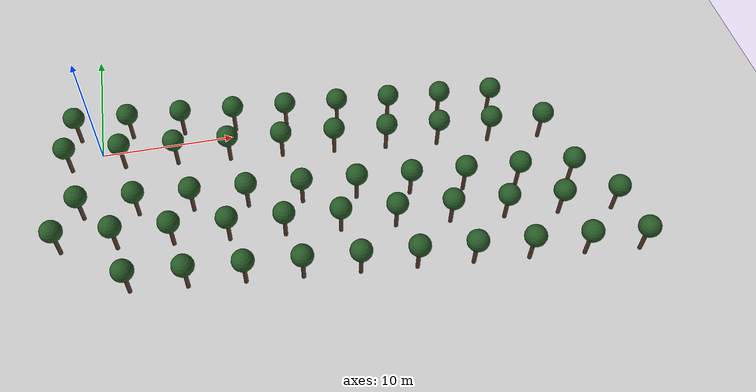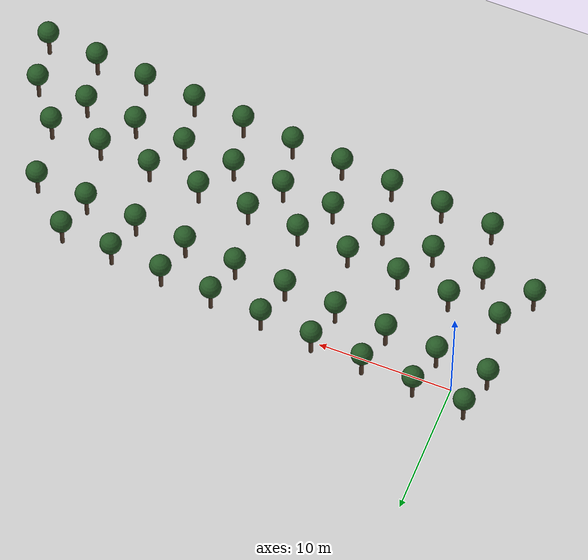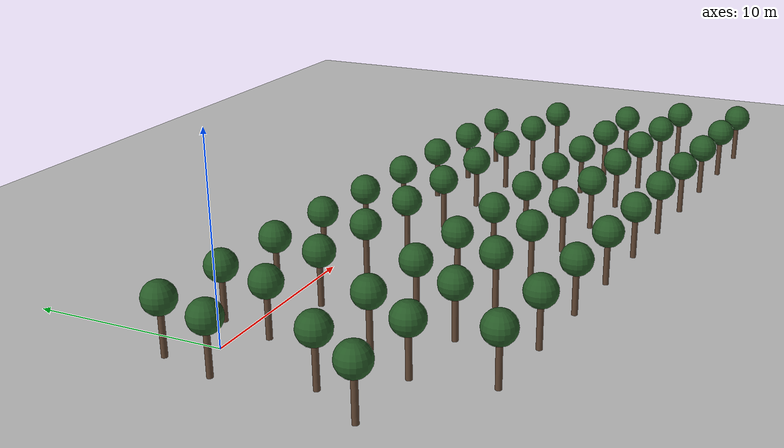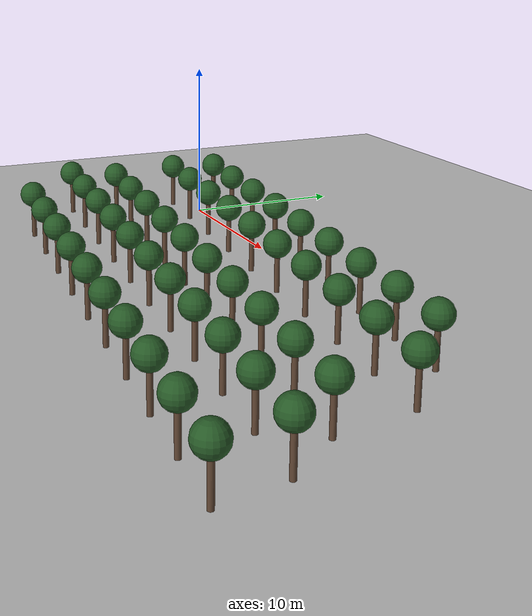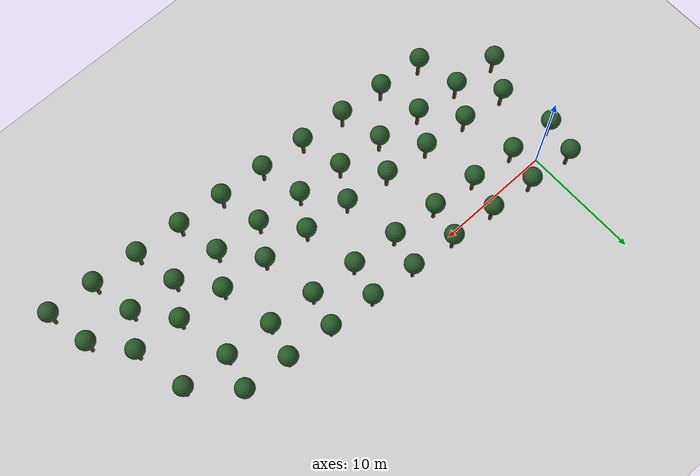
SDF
<?xml version="1.0"?>
<sdf version="1.6">
  <world name="orchard_world">
    <include>
      <uri>model://sun</uri>
    </include>

    <include>
      <uri>model://ground_plane</uri>
    </include>

    <model name="tree_r00_t000">
      <static>true</static>
      <pose>1.628047 -12.372685 0 0 0 0</pose>
      <link name="link">
        <collision name="trunk_collision">
          <pose>0 0 1.000000 0 0 0</pose>
          <geometry>
            <cylinder>
              <radius>0.150000</radius>
              <length>2.000000</length>
            </cylinder>
          </geometry>
        </collision>
        <visual name="trunk_visual">
          <pose>0 0 1.000000 0 0 0</pose>
          <geometry>
            <cylinder>
              <radius>0.150000</radius>
              <length>2.000000</length>
            </cylinder>
          </geometry>
          <material>
            <ambient>0.25 0.18 0.12 1</ambient>
            <diffuse>0.35 0.25 0.18 1</diffuse>
          </material>
        </visual>
        <visual name="canopy_visual">
          <pose>0 0 2.800000 0 0 0</pose>
          <geometry>
            <sphere>
              <radius>0.800000</radius>
            </sphere>
          </geometry>
          <material>
            <ambient>0.10 0.25 0.10 1</ambient>
            <diffuse>0.15 0.35 0.15 1</diffuse>
          </material>
        </visual>
      </link>
    </model>
    <model name="tree_r00_t001">
      <static>true</static>
      <pose>5.612924 -12.720177 0 0 0 0</pose>
      <link name="link">
        <collision name="trunk_collision">
          <pose>0 0 1.000000 0 0 0</pose>
          <geometry>
            <cylinder>
              <radius>0.150000</radius>
              <length>2.000000</length>
            </cylinder>
          </geometry>
        </collision>
        <visual name="trunk_visual">
          <pose>0 0 1.000000 0 0 0</pose>
          <geometry>
            <cylinder>
              <radius>0.150000</radius>
              <length>2.000000</length>
            </cylinder>
          </geometry>
          <material>
            <ambient>0.25 0.18 0.12 1</ambient>
            <diffuse>0.35 0.25 0.18 1</diffuse>
          </material>
        </visual>
        <visual name="canopy_visual">
          <pose>0 0 2.800000 0 0 0</pose>
          <geometry>
            <sphere>
              <radius>0.800000</radius>
            </sphere>
          </geometry>
          <material>
            <ambient>0.10 0.25 0.10 1</ambient>
            <diffuse>0.15 0.35 0.15 1</diffuse>
          </material>
        </visual>
      </link>
    </model>
    <model name="tree_r00_t002">
      <static>true</static>
      <pose>9.597802 -13.067669 0 0 0 0</pose>
      <link name="link">
        <collision name="trunk_collision">
          <pose>0 0 1.000000 0 0 0</pose>
          <geometry>
            <cylinder>
              <radius>0.150000</radius>
              <length>2.000000</length>
            </cylinder>
          </geometry>
        </collision>
        <visual name="trunk_visual">
          <pose>0 0 1.000000 0 0 0</pose>
          <geometry>
            <cylinder>
              <radius>0.150000</radius>
              <length>2.000000</length>
            </cylinder>
          </geometry>
          <material>
            <ambient>0.25 0.18 0.12 1</ambient>
            <diffuse>0.35 0.25 0.18 1</diffuse>
          </material>
        </visual>
        <visual name="canopy_visual">
          <pose>0 0 2.800000 0 0 0</pose>
          <geometry>
            <sphere>
              <radius>0.800000</radius>
            </sphere>
          </geometry>
          <material>
            <ambient>0.10 0.25 0.10 1</ambient>
            <diffuse>0.15 0.35 0.15 1</diffuse>
          </material>
        </visual>
      </link>
    </model>
    <model name="tree_r00_t003">
      <static>true</static>
      <pose>13.582680 -13.415161 0 0 0 0</pose>
      <link name="link">
        <collision name="trunk_collision">
          <pose>0 0 1.000000 0 0 0</pose>
          <geometry>
            <cylinder>
              <radius>0.150000</radius>
              <length>2.000000</length>
            </cylinder>
          </geometry>
        </collision>
        <visual name="trunk_visual">
          <pose>0 0 1.000000 0 0 0</pose>
          <geometry>
            <cylinder>
              <radius>0.150000</radius>
              <length>2.000000</length>
            </cylinder>
          </geometry>
          <material>
            <ambient>0.25 0.18 0.12 1</ambient>
            <diffuse>0.35 0.25 0.18 1</diffuse>
          </material>
        </visual>
        <visual name="canopy_visual">
          <pose>0 0 2.800000 0 0 0</pose>
          <geometry>
            <sphere>
              <radius>0.800000</radius>
            </sphere>
          </geometry>
          <material>
            <ambient>0.10 0.25 0.10 1</ambient>
            <diffuse>0.15 0.35 0.15 1</diffuse>
          </material>
        </visual>
      </link>
    </model>
    <model name="tree_r00_t004">
      <static>true</static>
      <pose>17.567557 -13.762653 0 0 0 0</pose>
      <link name="link">
        <collision name="trunk_collision">
          <pose>0 0 1.000000 0 0 0</pose>
          <geometry>
            <cylinder>
              <radius>0.150000</radius>
              <length>2.000000</length>
            </cylinder>
          </geometry>
        </collision>
        <visual name="trunk_visual">
          <pose>0 0 1.000000 0 0 0</pose>
          <geometry>
            <cylinder>
              <radius>0.150000</radius>
              <length>2.000000</length>
            </cylinder>
          </geometry>
          <material>
            <ambient>0.25 0.18 0.12 1</ambient>
            <diffuse>0.35 0.25 0.18 1</diffuse>
          </material>
        </visual>
        <visual name="canopy_visual">
          <pose>0 0 2.800000 0 0 0</pose>
          <geometry>
            <sphere>
              <radius>0.800000</radius>
            </sphere>
          </geometry>
          <material>
            <ambient>0.10 0.25 0.10 1</ambient>
            <diffuse>0.15 0.35 0.15 1</diffuse>
          </material>
        </visual>
      </link>
    </model>
    <model name="tree_r00_t005">
      <static>true</static>
      <pose>21.552435 -14.110145 0 0 0 0</pose>
      <link name="link">
        <collision name="trunk_collision">
          <pose>0 0 1.000000 0 0 0</pose>
          <geometry>
            <cylinder>
              <radius>0.150000</radius>
              <length>2.000000</length>
            </cylinder>
          </geometry>
        </collision>
        <visual name="trunk_visual">
          <pose>0 0 1.000000 0 0 0</pose>
          <geometry>
            <cylinder>
              <radius>0.150000</radius>
              <length>2.000000</length>
            </cylinder>
          </geometry>
          <material>
            <ambient>0.25 0.18 0.12 1</ambient>
            <diffuse>0.35 0.25 0.18 1</diffuse>
          </material>
        </visual>
        <visual name="canopy_visual">
          <pose>0 0 2.800000 0 0 0</pose>
          <geometry>
            <sphere>
              <radius>0.800000</radius>
            </sphere>
          </geometry>
          <material>
            <ambient>0.10 0.25 0.10 1</ambient>
            <diffuse>0.15 0.35 0.15 1</diffuse>
          </material>
        </visual>
      </link>
    </model>
    <model name="tree_r00_t006">
      <static>true</static>
      <pose>25.537312 -14.457637 0 0 0 0</pose>
      <link name="link">
        <collision name="trunk_collision">
          <pose>0 0 1.000000 0 0 0</pose>
          <geometry>
            <cylinder>
              <radius>0.150000</radius>
              <length>2.000000</length>
            </cylinder>
          </geometry>
        </collision>
        <visual name="trunk_visual">
          <pose>0 0 1.000000 0 0 0</pose>
          <geometry>
            <cylinder>
              <radius>0.150000</radius>
              <length>2.000000</length>
            </cylinder>
          </geometry>
          <material>
            <ambient>0.25 0.18 0.12 1</ambient>
            <diffuse>0.35 0.25 0.18 1</diffuse>
          </material>
        </visual>
        <visual name="canopy_visual">
          <pose>0 0 2.800000 0 0 0</pose>
          <geometry>
            <sphere>
              <radius>0.800000</radius>
            </sphere>
          </geometry>
          <material>
            <ambient>0.10 0.25 0.10 1</ambient>
            <diffuse>0.15 0.35 0.15 1</diffuse>
          </material>
        </visual>
      </link>
    </model>
    <model name="tree_r00_t007">
      <static>true</static>
      <pose>29.522190 -14.805128 0 0 0 0</pose>
      <link name="link">
        <collision name="trunk_collision">
          <pose>0 0 1.000000 0 0 0</pose>
          <geometry>
            <cylinder>
              <radius>0.150000</radius>
              <length>2.000000</length>
            </cylinder>
          </geometry>
        </collision>
        <visual name="trunk_visual">
          <pose>0 0 1.000000 0 0 0</pose>
          <geometry>
            <cylinder>
              <radius>0.150000</radius>
              <length>2.000000</length>
            </cylinder>
          </geometry>
          <material>
            <ambient>0.25 0.18 0.12 1</ambient>
            <diffuse>0.35 0.25 0.18 1</diffuse>
          </material>
        </visual>
        <visual name="canopy_visual">
          <pose>0 0 2.800000 0 0 0</pose>
          <geometry>
            <sphere>
              <radius>0.800000</radius>
            </sphere>
          </geometry>
          <material>
            <ambient>0.10 0.25 0.10 1</ambient>
            <diffuse>0.15 0.35 0.15 1</diffuse>
          </material>
        </visual>
      </link>
    </model>
    <model name="tree_r00_t008">
      <static>true</static>
      <pose>33.507067 -15.152620 0 0 0 0</pose>
      <link name="link">
        <collision name="trunk_collision">
          <pose>0 0 1.000000 0 0 0</pose>
          <geometry>
            <cylinder>
              <radius>0.150000</radius>
              <length>2.000000</length>
            </cylinder>
          </geometry>
        </collision>
        <visual name="trunk_visual">
          <pose>0 0 1.000000 0 0 0</pose>
          <geometry>
            <cylinder>
              <radius>0.150000</radius>
              <length>2.000000</length>
            </cylinder>
          </geometry>
          <material>
            <ambient>0.25 0.18 0.12 1</ambient>
            <diffuse>0.35 0.25 0.18 1</diffuse>
          </material>
        </visual>
        <visual name="canopy_visual">
          <pose>0 0 2.800000 0 0 0</pose>
          <geometry>
            <sphere>
              <radius>0.800000</radius>
            </sphere>
          </geometry>
          <material>
            <ambient>0.10 0.25 0.10 1</ambient>
            <diffuse>0.15 0.35 0.15 1</diffuse>
          </material>
        </visual>
      </link>
    </model>
    <model name="tree_r00_t009">
      <static>true</static>
      <pose>37.491945 -15.500112 0 0 0 0</pose>
      <link name="link">
        <collision name="trunk_collision">
          <pose>0 0 1.000000 0 0 0</pose>
          <geometry>
            <cylinder>
              <radius>0.150000</radius>
              <length>2.000000</length>
            </cylinder>
          </geometry>
        </collision>
        <visual name="trunk_visual">
          <pose>0 0 1.000000 0 0 0</pose>
          <geometry>
            <cylinder>
              <radius>0.150000</radius>
              <length>2.000000</length>
            </cylinder>
          </geometry>
          <material>
            <ambient>0.25 0.18 0.12 1</ambient>
            <diffuse>0.35 0.25 0.18 1</diffuse>
          </material>
        </visual>
        <visual name="canopy_visual">
          <pose>0 0 2.800000 0 0 0</pose>
          <geometry>
            <sphere>
              <radius>0.800000</radius>
            </sphere>
          </geometry>
          <material>
            <ambient>0.10 0.25 0.10 1</ambient>
            <diffuse>0.15 0.35 0.15 1</diffuse>
          </material>
        </visual>
      </link>
    </model>
    <model name="tree_r01_t000">
      <static>true</static>
      <pose>-3.090552 -8.347535 0 0 0 0</pose>
      <link name="link">
        <collision name="trunk_collision">
          <pose>0 0 1.000000 0 0 0</pose>
          <geometry>
            <cylinder>
              <radius>0.150000</radius>
              <length>2.000000</length>
            </cylinder>
          </geometry>
        </collision>
        <visual name="trunk_visual">
          <pose>0 0 1.000000 0 0 0</pose>
          <geometry>
            <cylinder>
              <radius>0.150000</radius>
              <length>2.000000</length>
            </cylinder>
          </geometry>
          <material>
            <ambient>0.25 0.18 0.12 1</ambient>
            <diffuse>0.35 0.25 0.18 1</diffuse>
          </material>
        </visual>
        <visual name="canopy_visual">
          <pose>0 0 2.800000 0 0 0</pose>
          <geometry>
            <sphere>
              <radius>0.800000</radius>
            </sphere>
          </geometry>
          <material>
            <ambient>0.10 0.25 0.10 1</ambient>
            <diffuse>0.15 0.35 0.15 1</diffuse>
          </material>
        </visual>
      </link>
    </model>
    <model name="tree_r01_t001">
      <static>true</static>
      <pose>0.894326 -8.695027 0 0 0 0</pose>
      <link name="link">
        <collision name="trunk_collision">
          <pose>0 0 1.000000 0 0 0</pose>
          <geometry>
            <cylinder>
              <radius>0.150000</radius>
              <length>2.000000</length>
            </cylinder>
          </geometry>
        </collision>
        <visual name="trunk_visual">
          <pose>0 0 1.000000 0 0 0</pose>
          <geometry>
            <cylinder>
              <radius>0.150000</radius>
              <length>2.000000</length>
            </cylinder>
          </geometry>
          <material>
            <ambient>0.25 0.18 0.12 1</ambient>
            <diffuse>0.35 0.25 0.18 1</diffuse>
          </material>
        </visual>
        <visual name="canopy_visual">
          <pose>0 0 2.800000 0 0 0</pose>
          <geometry>
            <sphere>
              <radius>0.800000</radius>
            </sphere>
          </geometry>
          <material>
            <ambient>0.10 0.25 0.10 1</ambient>
            <diffuse>0.15 0.35 0.15 1</diffuse>
          </material>
        </visual>
      </link>
    </model>
    <model name="tree_r01_t002">
      <static>true</static>
      <pose>4.879203 -9.042519 0 0 0 0</pose>
      <link name="link">
        <collision name="trunk_collision">
          <pose>0 0 1.000000 0 0 0</pose>
          <geometry>
            <cylinder>
              <radius>0.150000</radius>
              <length>2.000000</length>
            </cylinder>
          </geometry>
        </collision>
        <visual name="trunk_visual">
          <pose>0 0 1.000000 0 0 0</pose>
          <geometry>
            <cylinder>
              <radius>0.150000</radius>
              <length>2.000000</length>
            </cylinder>
          </geometry>
          <material>
            <ambient>0.25 0.18 0.12 1</ambient>
            <diffuse>0.35 0.25 0.18 1</diffuse>
          </material>
        </visual>
        <visual name="canopy_visual">
          <pose>0 0 2.800000 0 0 0</pose>
          <geometry>
            <sphere>
              <radius>0.800000</radius>
            </sphere>
          </geometry>
          <material>
            <ambient>0.10 0.25 0.10 1</ambient>
            <diffuse>0.15 0.35 0.15 1</diffuse>
          </material>
        </visual>
      </link>
    </model>
    <model name="tree_r01_t003">
      <static>true</static>
      <pose>8.864081 -9.390011 0 0 0 0</pose>
      <link name="link">
        <collision name="trunk_collision">
          <pose>0 0 1.000000 0 0 0</pose>
          <geometry>
            <cylinder>
              <radius>0.150000</radius>
              <length>2.000000</length>
            </cylinder>
          </geometry>
        </collision>
        <visual name="trunk_visual">
          <pose>0 0 1.000000 0 0 0</pose>
          <geometry>
            <cylinder>
              <radius>0.150000</radius>
              <length>2.000000</length>
            </cylinder>
          </geometry>
          <material>
            <ambient>0.25 0.18 0.12 1</ambient>
            <diffuse>0.35 0.25 0.18 1</diffuse>
          </material>
        </visual>
        <visual name="canopy_visual">
          <pose>0 0 2.800000 0 0 0</pose>
          <geometry>
            <sphere>
              <radius>0.800000</radius>
            </sphere>
          </geometry>
          <material>
            <ambient>0.10 0.25 0.10 1</ambient>
            <diffuse>0.15 0.35 0.15 1</diffuse>
          </material>
        </visual>
      </link>
    </model>
    <model name="tree_r01_t004">
      <static>true</static>
      <pose>12.848959 -9.737503 0 0 0 0</pose>
      <link name="link">
        <collision name="trunk_collision">
          <pose>0 0 1.000000 0 0 0</pose>
          <geometry>
            <cylinder>
              <radius>0.150000</radius>
              <length>2.000000</length>
            </cylinder>
          </geometry>
        </collision>
        <visual name="trunk_visual">
          <pose>0 0 1.000000 0 0 0</pose>
          <geometry>
            <cylinder>
              <radius>0.150000</radius>
              <length>2.000000</length>
            </cylinder>
          </geometry>
          <material>
            <ambient>0.25 0.18 0.12 1</ambient>
            <diffuse>0.35 0.25 0.18 1</diffuse>
          </material>
        </visual>
        <visual name="canopy_visual">
          <pose>0 0 2.800000 0 0 0</pose>
          <geometry>
            <sphere>
              <radius>0.800000</radius>
            </sphere>
          </geometry>
          <material>
            <ambient>0.10 0.25 0.10 1</ambient>
            <diffuse>0.15 0.35 0.15 1</diffuse>
          </material>
        </visual>
      </link>
    </model>
    <model name="tree_r01_t005">
      <static>true</static>
      <pose>16.833836 -10.084995 0 0 0 0</pose>
      <link name="link">
        <collision name="trunk_collision">
          <pose>0 0 1.000000 0 0 0</pose>
          <geometry>
            <cylinder>
              <radius>0.150000</radius>
              <length>2.000000</length>
            </cylinder>
          </geometry>
        </collision>
        <visual name="trunk_visual">
          <pose>0 0 1.000000 0 0 0</pose>
          <geometry>
            <cylinder>
              <radius>0.150000</radius>
              <length>2.000000</length>
            </cylinder>
          </geometry>
          <material>
            <ambient>0.25 0.18 0.12 1</ambient>
            <diffuse>0.35 0.25 0.18 1</diffuse>
          </material>
        </visual>
        <visual name="canopy_visual">
          <pose>0 0 2.800000 0 0 0</pose>
          <geometry>
            <sphere>
              <radius>0.800000</radius>
            </sphere>
          </geometry>
          <material>
            <ambient>0.10 0.25 0.10 1</ambient>
            <diffuse>0.15 0.35 0.15 1</diffuse>
          </material>
        </visual>
      </link>
    </model>
    <model name="tree_r01_t006">
      <static>true</static>
      <pose>20.818714 -10.432487 0 0 0 0</pose>
      <link name="link">
        <collision name="trunk_collision">
          <pose>0 0 1.000000 0 0 0</pose>
          <geometry>
            <cylinder>
              <radius>0.150000</radius>
              <length>2.000000</length>
            </cylinder>
          </geometry>
        </collision>
        <visual name="trunk_visual">
          <pose>0 0 1.000000 0 0 0</pose>
          <geometry>
            <cylinder>
              <radius>0.150000</radius>
              <length>2.000000</length>
            </cylinder>
          </geometry>
          <material>
            <ambient>0.25 0.18 0.12 1</ambient>
            <diffuse>0.35 0.25 0.18 1</diffuse>
          </material>
        </visual>
        <visual name="canopy_visual">
          <pose>0 0 2.800000 0 0 0</pose>
          <geometry>
            <sphere>
              <radius>0.800000</radius>
            </sphere>
          </geometry>
          <material>
            <ambient>0.10 0.25 0.10 1</ambient>
            <diffuse>0.15 0.35 0.15 1</diffuse>
          </material>
        </visual>
      </link>
    </model>
    <model name="tree_r01_t007">
      <static>true</static>
      <pose>24.803591 -10.779979 0 0 0 0</pose>
      <link name="link">
        <collision name="trunk_collision">
          <pose>0 0 1.000000 0 0 0</pose>
          <geometry>
            <cylinder>
              <radius>0.150000</radius>
              <length>2.000000</length>
            </cylinder>
          </geometry>
        </collision>
        <visual name="trunk_visual">
          <pose>0 0 1.000000 0 0 0</pose>
          <geometry>
            <cylinder>
              <radius>0.150000</radius>
              <length>2.000000</length>
            </cylinder>
          </geometry>
          <material>
            <ambient>0.25 0.18 0.12 1</ambient>
            <diffuse>0.35 0.25 0.18 1</diffuse>
          </material>
        </visual>
        <visual name="canopy_visual">
          <pose>0 0 2.800000 0 0 0</pose>
          <geometry>
            <sphere>
              <radius>0.800000</radius>
            </sphere>
          </geometry>
          <material>
            <ambient>0.10 0.25 0.10 1</ambient>
            <diffuse>0.15 0.35 0.15 1</diffuse>
          </material>
        </visual>
      </link>
    </model>
    <model name="tree_r01_t008">
      <static>true</static>
      <pose>28.788469 -11.127470 0 0 0 0</pose>
      <link name="link">
        <collision name="trunk_collision">
          <pose>0 0 1.000000 0 0 0</pose>
          <geometry>
            <cylinder>
              <radius>0.150000</radius>
              <length>2.000000</length>
            </cylinder>
          </geometry>
        </collision>
        <visual name="trunk_visual">
          <pose>0 0 1.000000 0 0 0</pose>
          <geometry>
            <cylinder>
              <radius>0.150000</radius>
              <length>2.000000</length>
            </cylinder>
          </geometry>
          <material>
            <ambient>0.25 0.18 0.12 1</ambient>
            <diffuse>0.35 0.25 0.18 1</diffuse>
          </material>
        </visual>
        <visual name="canopy_visual">
          <pose>0 0 2.800000 0 0 0</pose>
          <geometry>
            <sphere>
              <radius>0.800000</radius>
            </sphere>
          </geometry>
          <material>
            <ambient>0.10 0.25 0.10 1</ambient>
            <diffuse>0.15 0.35 0.15 1</diffuse>
          </material>
        </visual>
      </link>
    </model>
    <model name="tree_r01_t009">
      <static>true</static>
      <pose>32.773347 -11.474962 0 0 0 0</pose>
      <link name="link">
        <collision name="trunk_collision">
          <pose>0 0 1.000000 0 0 0</pose>
          <geometry>
            <cylinder>
              <radius>0.150000</radius>
              <length>2.000000</length>
            </cylinder>
          </geometry>
        </collision>
        <visual name="trunk_visual">
          <pose>0 0 1.000000 0 0 0</pose>
          <geometry>
            <cylinder>
              <radius>0.150000</radius>
              <length>2.000000</length>
            </cylinder>
          </geometry>
          <material>
            <ambient>0.25 0.18 0.12 1</ambient>
            <diffuse>0.35 0.25 0.18 1</diffuse>
          </material>
        </visual>
        <visual name="canopy_visual">
          <pose>0 0 2.800000 0 0 0</pose>
          <geometry>
            <sphere>
              <radius>0.800000</radius>
            </sphere>
          </geometry>
          <material>
            <ambient>0.10 0.25 0.10 1</ambient>
            <diffuse>0.15 0.35 0.15 1</diffuse>
          </material>
        </visual>
      </link>
    </model>
    <model name="tree_r01_t010">
      <static>true</static>
      <pose>36.758224 -11.822454 0 0 0 0</pose>
      <link name="link">
        <collision name="trunk_collision">
          <pose>0 0 1.000000 0 0 0</pose>
          <geometry>
            <cylinder>
              <radius>0.150000</radius>
              <length>2.000000</length>
            </cylinder>
          </geometry>
        </collision>
        <visual name="trunk_visual">
          <pose>0 0 1.000000 0 0 0</pose>
          <geometry>
            <cylinder>
              <radius>0.150000</radius>
              <length>2.000000</length>
            </cylinder>
          </geometry>
          <material>
            <ambient>0.25 0.18 0.12 1</ambient>
            <diffuse>0.35 0.25 0.18 1</diffuse>
          </material>
        </visual>
        <visual name="canopy_visual">
          <pose>0 0 2.800000 0 0 0</pose>
          <geometry>
            <sphere>
              <radius>0.800000</radius>
            </sphere>
          </geometry>
          <material>
            <ambient>0.10 0.25 0.10 1</ambient>
            <diffuse>0.15 0.35 0.15 1</diffuse>
          </material>
        </visual>
      </link>
    </model>
    <model name="tree_r02_t000">
      <static>true</static>
      <pose>-1.440409 -5.680796 0 0 0 0</pose>
      <link name="link">
        <collision name="trunk_collision">
          <pose>0 0 1.000000 0 0 0</pose>
          <geometry>
            <cylinder>
              <radius>0.150000</radius>
              <length>2.000000</length>
            </cylinder>
          </geometry>
        </collision>
        <visual name="trunk_visual">
          <pose>0 0 1.000000 0 0 0</pose>
          <geometry>
            <cylinder>
              <radius>0.150000</radius>
              <length>2.000000</length>
            </cylinder>
          </geometry>
          <material>
            <ambient>0.25 0.18 0.12 1</ambient>
            <diffuse>0.35 0.25 0.18 1</diffuse>
          </material>
        </visual>
        <visual name="canopy_visual">
          <pose>0 0 2.800000 0 0 0</pose>
          <geometry>
            <sphere>
              <radius>0.800000</radius>
            </sphere>
          </geometry>
          <material>
            <ambient>0.10 0.25 0.10 1</ambient>
            <diffuse>0.15 0.35 0.15 1</diffuse>
          </material>
        </visual>
      </link>
    </model>
    <model name="tree_r02_t001">
      <static>true</static>
      <pose>2.544469 -6.028288 0 0 0 0</pose>
      <link name="link">
        <collision name="trunk_collision">
          <pose>0 0 1.000000 0 0 0</pose>
          <geometry>
            <cylinder>
              <radius>0.150000</radius>
              <length>2.000000</length>
            </cylinder>
          </geometry>
        </collision>
        <visual name="trunk_visual">
          <pose>0 0 1.000000 0 0 0</pose>
          <geometry>
            <cylinder>
              <radius>0.150000</radius>
              <length>2.000000</length>
            </cylinder>
          </geometry>
          <material>
            <ambient>0.25 0.18 0.12 1</ambient>
            <diffuse>0.35 0.25 0.18 1</diffuse>
          </material>
        </visual>
        <visual name="canopy_visual">
          <pose>0 0 2.800000 0 0 0</pose>
          <geometry>
            <sphere>
              <radius>0.800000</radius>
            </sphere>
          </geometry>
          <material>
            <ambient>0.10 0.25 0.10 1</ambient>
            <diffuse>0.15 0.35 0.15 1</diffuse>
          </material>
        </visual>
      </link>
    </model>
    <model name="tree_r02_t002">
      <static>true</static>
      <pose>6.529346 -6.375779 0 0 0 0</pose>
      <link name="link">
        <collision name="trunk_collision">
          <pose>0 0 1.000000 0 0 0</pose>
          <geometry>
            <cylinder>
              <radius>0.150000</radius>
              <length>2.000000</length>
            </cylinder>
          </geometry>
        </collision>
        <visual name="trunk_visual">
          <pose>0 0 1.000000 0 0 0</pose>
          <geometry>
            <cylinder>
              <radius>0.150000</radius>
              <length>2.000000</length>
            </cylinder>
          </geometry>
          <material>
            <ambient>0.25 0.18 0.12 1</ambient>
            <diffuse>0.35 0.25 0.18 1</diffuse>
          </material>
        </visual>
        <visual name="canopy_visual">
          <pose>0 0 2.800000 0 0 0</pose>
          <geometry>
            <sphere>
              <radius>0.800000</radius>
            </sphere>
          </geometry>
          <material>
            <ambient>0.10 0.25 0.10 1</ambient>
            <diffuse>0.15 0.35 0.15 1</diffuse>
          </material>
        </visual>
      </link>
    </model>
    <model name="tree_r02_t003">
      <static>true</static>
      <pose>10.514224 -6.723271 0 0 0 0</pose>
      <link name="link">
        <collision name="trunk_collision">
          <pose>0 0 1.000000 0 0 0</pose>
          <geometry>
            <cylinder>
              <radius>0.150000</radius>
              <length>2.000000</length>
            </cylinder>
          </geometry>
        </collision>
        <visual name="trunk_visual">
          <pose>0 0 1.000000 0 0 0</pose>
          <geometry>
            <cylinder>
              <radius>0.150000</radius>
              <length>2.000000</length>
            </cylinder>
          </geometry>
          <material>
            <ambient>0.25 0.18 0.12 1</ambient>
            <diffuse>0.35 0.25 0.18 1</diffuse>
          </material>
        </visual>
        <visual name="canopy_visual">
          <pose>0 0 2.800000 0 0 0</pose>
          <geometry>
            <sphere>
              <radius>0.800000</radius>
            </sphere>
          </geometry>
          <material>
            <ambient>0.10 0.25 0.10 1</ambient>
            <diffuse>0.15 0.35 0.15 1</diffuse>
          </material>
        </visual>
      </link>
    </model>
    <model name="tree_r02_t004">
      <static>true</static>
      <pose>14.499102 -7.070763 0 0 0 0</pose>
      <link name="link">
        <collision name="trunk_collision">
          <pose>0 0 1.000000 0 0 0</pose>
          <geometry>
            <cylinder>
              <radius>0.150000</radius>
              <length>2.000000</length>
            </cylinder>
          </geometry>
        </collision>
        <visual name="trunk_visual">
          <pose>0 0 1.000000 0 0 0</pose>
          <geometry>
            <cylinder>
              <radius>0.150000</radius>
              <length>2.000000</length>
            </cylinder>
          </geometry>
          <material>
            <ambient>0.25 0.18 0.12 1</ambient>
            <diffuse>0.35 0.25 0.18 1</diffuse>
          </material>
        </visual>
        <visual name="canopy_visual">
          <pose>0 0 2.800000 0 0 0</pose>
          <geometry>
            <sphere>
              <radius>0.800000</radius>
            </sphere>
          </geometry>
          <material>
            <ambient>0.10 0.25 0.10 1</ambient>
            <diffuse>0.15 0.35 0.15 1</diffuse>
          </material>
        </visual>
      </link>
    </model>
    <model name="tree_r02_t005">
      <static>true</static>
      <pose>18.483979 -7.418255 0 0 0 0</pose>
      <link name="link">
        <collision name="trunk_collision">
          <pose>0 0 1.000000 0 0 0</pose>
          <geometry>
            <cylinder>
              <radius>0.150000</radius>
              <length>2.000000</length>
            </cylinder>
          </geometry>
        </collision>
        <visual name="trunk_visual">
          <pose>0 0 1.000000 0 0 0</pose>
          <geometry>
            <cylinder>
              <radius>0.150000</radius>
              <length>2.000000</length>
            </cylinder>
          </geometry>
          <material>
            <ambient>0.25 0.18 0.12 1</ambient>
            <diffuse>0.35 0.25 0.18 1</diffuse>
          </material>
        </visual>
        <visual name="canopy_visual">
          <pose>0 0 2.800000 0 0 0</pose>
          <geometry>
            <sphere>
              <radius>0.800000</radius>
            </sphere>
          </geometry>
          <material>
            <ambient>0.10 0.25 0.10 1</ambient>
            <diffuse>0.15 0.35 0.15 1</diffuse>
          </material>
        </visual>
      </link>
    </model>
    <model name="tree_r02_t006">
      <static>true</static>
      <pose>22.468857 -7.765747 0 0 0 0</pose>
      <link name="link">
        <collision name="trunk_collision">
          <pose>0 0 1.000000 0 0 0</pose>
          <geometry>
            <cylinder>
              <radius>0.150000</radius>
              <length>2.000000</length>
            </cylinder>
          </geometry>
        </collision>
        <visual name="trunk_visual">
          <pose>0 0 1.000000 0 0 0</pose>
          <geometry>
            <cylinder>
              <radius>0.150000</radius>
              <length>2.000000</length>
            </cylinder>
          </geometry>
          <material>
            <ambient>0.25 0.18 0.12 1</ambient>
            <diffuse>0.35 0.25 0.18 1</diffuse>
          </material>
        </visual>
        <visual name="canopy_visual">
          <pose>0 0 2.800000 0 0 0</pose>
          <geometry>
            <sphere>
              <radius>0.800000</radius>
            </sphere>
          </geometry>
          <material>
            <ambient>0.10 0.25 0.10 1</ambient>
            <diffuse>0.15 0.35 0.15 1</diffuse>
          </material>
        </visual>
      </link>
    </model>
    <model name="tree_r02_t007">
      <static>true</static>
      <pose>26.453734 -8.113239 0 0 0 0</pose>
      <link name="link">
        <collision name="trunk_collision">
          <pose>0 0 1.000000 0 0 0</pose>
          <geometry>
            <cylinder>
              <radius>0.150000</radius>
              <length>2.000000</length>
            </cylinder>
          </geometry>
        </collision>
        <visual name="trunk_visual">
          <pose>0 0 1.000000 0 0 0</pose>
          <geometry>
            <cylinder>
              <radius>0.150000</radius>
              <length>2.000000</length>
            </cylinder>
          </geometry>
          <material>
            <ambient>0.25 0.18 0.12 1</ambient>
            <diffuse>0.35 0.25 0.18 1</diffuse>
          </material>
        </visual>
        <visual name="canopy_visual">
          <pose>0 0 2.800000 0 0 0</pose>
          <geometry>
            <sphere>
              <radius>0.800000</radius>
            </sphere>
          </geometry>
          <material>
            <ambient>0.10 0.25 0.10 1</ambient>
            <diffuse>0.15 0.35 0.15 1</diffuse>
          </material>
        </visual>
      </link>
    </model>
    <model name="tree_r02_t008">
      <static>true</static>
      <pose>30.438612 -8.460731 0 0 0 0</pose>
      <link name="link">
        <collision name="trunk_collision">
          <pose>0 0 1.000000 0 0 0</pose>
          <geometry>
            <cylinder>
              <radius>0.150000</radius>
              <length>2.000000</length>
            </cylinder>
          </geometry>
        </collision>
        <visual name="trunk_visual">
          <pose>0 0 1.000000 0 0 0</pose>
          <geometry>
            <cylinder>
              <radius>0.150000</radius>
              <length>2.000000</length>
            </cylinder>
          </geometry>
          <material>
            <ambient>0.25 0.18 0.12 1</ambient>
            <diffuse>0.35 0.25 0.18 1</diffuse>
          </material>
        </visual>
        <visual name="canopy_visual">
          <pose>0 0 2.800000 0 0 0</pose>
          <geometry>
            <sphere>
              <radius>0.800000</radius>
            </sphere>
          </geometry>
          <material>
            <ambient>0.10 0.25 0.10 1</ambient>
            <diffuse>0.15 0.35 0.15 1</diffuse>
          </material>
        </visual>
      </link>
    </model>
    <model name="tree_r02_t009">
      <static>true</static>
      <pose>34.423490 -8.808222 0 0 0 0</pose>
      <link name="link">
        <collision name="trunk_collision">
          <pose>0 0 1.000000 0 0 0</pose>
          <geometry>
            <cylinder>
              <radius>0.150000</radius>
              <length>2.000000</length>
            </cylinder>
          </geometry>
        </collision>
        <visual name="trunk_visual">
          <pose>0 0 1.000000 0 0 0</pose>
          <geometry>
            <cylinder>
              <radius>0.150000</radius>
              <length>2.000000</length>
            </cylinder>
          </geometry>
          <material>
            <ambient>0.25 0.18 0.12 1</ambient>
            <diffuse>0.35 0.25 0.18 1</diffuse>
          </material>
        </visual>
        <visual name="canopy_visual">
          <pose>0 0 2.800000 0 0 0</pose>
          <geometry>
            <sphere>
              <radius>0.800000</radius>
            </sphere>
          </geometry>
          <material>
            <ambient>0.10 0.25 0.10 1</ambient>
            <diffuse>0.15 0.35 0.15 1</diffuse>
          </material>
        </visual>
      </link>
    </model>
    <model name="tree_r03_t000">
      <static>true</static>
      <pose>-2.294395 -1.089231 0 0 0 0</pose>
      <link name="link">
        <collision name="trunk_collision">
          <pose>0 0 1.000000 0 0 0</pose>
          <geometry>
            <cylinder>
              <radius>0.150000</radius>
              <length>2.000000</length>
            </cylinder>
          </geometry>
        </collision>
        <visual name="trunk_visual">
          <pose>0 0 1.000000 0 0 0</pose>
          <geometry>
            <cylinder>
              <radius>0.150000</radius>
              <length>2.000000</length>
            </cylinder>
          </geometry>
          <material>
            <ambient>0.25 0.18 0.12 1</ambient>
            <diffuse>0.35 0.25 0.18 1</diffuse>
          </material>
        </visual>
        <visual name="canopy_visual">
          <pose>0 0 2.800000 0 0 0</pose>
          <geometry>
            <sphere>
              <radius>0.800000</radius>
            </sphere>
          </geometry>
          <material>
            <ambient>0.10 0.25 0.10 1</ambient>
            <diffuse>0.15 0.35 0.15 1</diffuse>
          </material>
        </visual>
      </link>
    </model>
    <model name="tree_r03_t001">
      <static>true</static>
      <pose>1.690482 -1.436723 0 0 0 0</pose>
      <link name="link">
        <collision name="trunk_collision">
          <pose>0 0 1.000000 0 0 0</pose>
          <geometry>
            <cylinder>
              <radius>0.150000</radius>
              <length>2.000000</length>
            </cylinder>
          </geometry>
        </collision>
        <visual name="trunk_visual">
          <pose>0 0 1.000000 0 0 0</pose>
          <geometry>
            <cylinder>
              <radius>0.150000</radius>
              <length>2.000000</length>
            </cylinder>
          </geometry>
          <material>
            <ambient>0.25 0.18 0.12 1</ambient>
            <diffuse>0.35 0.25 0.18 1</diffuse>
          </material>
        </visual>
        <visual name="canopy_visual">
          <pose>0 0 2.800000 0 0 0</pose>
          <geometry>
            <sphere>
              <radius>0.800000</radius>
            </sphere>
          </geometry>
          <material>
            <ambient>0.10 0.25 0.10 1</ambient>
            <diffuse>0.15 0.35 0.15 1</diffuse>
          </material>
        </visual>
      </link>
    </model>
    <model name="tree_r03_t002">
      <static>true</static>
      <pose>5.675360 -1.784215 0 0 0 0</pose>
      <link name="link">
        <collision name="trunk_collision">
          <pose>0 0 1.000000 0 0 0</pose>
          <geometry>
            <cylinder>
              <radius>0.150000</radius>
              <length>2.000000</length>
            </cylinder>
          </geometry>
        </collision>
        <visual name="trunk_visual">
          <pose>0 0 1.000000 0 0 0</pose>
          <geometry>
            <cylinder>
              <radius>0.150000</radius>
              <length>2.000000</length>
            </cylinder>
          </geometry>
          <material>
            <ambient>0.25 0.18 0.12 1</ambient>
            <diffuse>0.35 0.25 0.18 1</diffuse>
          </material>
        </visual>
        <visual name="canopy_visual">
          <pose>0 0 2.800000 0 0 0</pose>
          <geometry>
            <sphere>
              <radius>0.800000</radius>
            </sphere>
          </geometry>
          <material>
            <ambient>0.10 0.25 0.10 1</ambient>
            <diffuse>0.15 0.35 0.15 1</diffuse>
          </material>
        </visual>
      </link>
    </model>
    <model name="tree_r03_t003">
      <static>true</static>
      <pose>9.660237 -2.131707 0 0 0 0</pose>
      <link name="link">
        <collision name="trunk_collision">
          <pose>0 0 1.000000 0 0 0</pose>
          <geometry>
            <cylinder>
              <radius>0.150000</radius>
              <length>2.000000</length>
            </cylinder>
          </geometry>
        </collision>
        <visual name="trunk_visual">
          <pose>0 0 1.000000 0 0 0</pose>
          <geometry>
            <cylinder>
              <radius>0.150000</radius>
              <length>2.000000</length>
            </cylinder>
          </geometry>
          <material>
            <ambient>0.25 0.18 0.12 1</ambient>
            <diffuse>0.35 0.25 0.18 1</diffuse>
          </material>
        </visual>
        <visual name="canopy_visual">
          <pose>0 0 2.800000 0 0 0</pose>
          <geometry>
            <sphere>
              <radius>0.800000</radius>
            </sphere>
          </geometry>
          <material>
            <ambient>0.10 0.25 0.10 1</ambient>
            <diffuse>0.15 0.35 0.15 1</diffuse>
          </material>
        </visual>
      </link>
    </model>
    <model name="tree_r03_t004">
      <static>true</static>
      <pose>13.645115 -2.479199 0 0 0 0</pose>
      <link name="link">
        <collision name="trunk_collision">
          <pose>0 0 1.000000 0 0 0</pose>
          <geometry>
            <cylinder>
              <radius>0.150000</radius>
              <length>2.000000</length>
            </cylinder>
          </geometry>
        </collision>
        <visual name="trunk_visual">
          <pose>0 0 1.000000 0 0 0</pose>
          <geometry>
            <cylinder>
              <radius>0.150000</radius>
              <length>2.000000</length>
            </cylinder>
          </geometry>
          <material>
            <ambient>0.25 0.18 0.12 1</ambient>
            <diffuse>0.35 0.25 0.18 1</diffuse>
          </material>
        </visual>
        <visual name="canopy_visual">
          <pose>0 0 2.800000 0 0 0</pose>
          <geometry>
            <sphere>
              <radius>0.800000</radius>
            </sphere>
          </geometry>
          <material>
            <ambient>0.10 0.25 0.10 1</ambient>
            <diffuse>0.15 0.35 0.15 1</diffuse>
          </material>
        </visual>
      </link>
    </model>
    <model name="tree_r03_t005">
      <static>true</static>
      <pose>17.629993 -2.826691 0 0 0 0</pose>
      <link name="link">
        <collision name="trunk_collision">
          <pose>0 0 1.000000 0 0 0</pose>
          <geometry>
            <cylinder>
              <radius>0.150000</radius>
              <length>2.000000</length>
            </cylinder>
          </geometry>
        </collision>
        <visual name="trunk_visual">
          <pose>0 0 1.000000 0 0 0</pose>
          <geometry>
            <cylinder>
              <radius>0.150000</radius>
              <length>2.000000</length>
            </cylinder>
          </geometry>
          <material>
            <ambient>0.25 0.18 0.12 1</ambient>
            <diffuse>0.35 0.25 0.18 1</diffuse>
          </material>
        </visual>
        <visual name="canopy_visual">
          <pose>0 0 2.800000 0 0 0</pose>
          <geometry>
            <sphere>
              <radius>0.800000</radius>
            </sphere>
          </geometry>
          <material>
            <ambient>0.10 0.25 0.10 1</ambient>
            <diffuse>0.15 0.35 0.15 1</diffuse>
          </material>
        </visual>
      </link>
    </model>
    <model name="tree_r03_t006">
      <static>true</static>
      <pose>21.614870 -3.174183 0 0 0 0</pose>
      <link name="link">
        <collision name="trunk_collision">
          <pose>0 0 1.000000 0 0 0</pose>
          <geometry>
            <cylinder>
              <radius>0.150000</radius>
              <length>2.000000</length>
            </cylinder>
          </geometry>
        </collision>
        <visual name="trunk_visual">
          <pose>0 0 1.000000 0 0 0</pose>
          <geometry>
            <cylinder>
              <radius>0.150000</radius>
              <length>2.000000</length>
            </cylinder>
          </geometry>
          <material>
            <ambient>0.25 0.18 0.12 1</ambient>
            <diffuse>0.35 0.25 0.18 1</diffuse>
          </material>
        </visual>
        <visual name="canopy_visual">
          <pose>0 0 2.800000 0 0 0</pose>
          <geometry>
            <sphere>
              <radius>0.800000</radius>
            </sphere>
          </geometry>
          <material>
            <ambient>0.10 0.25 0.10 1</ambient>
            <diffuse>0.15 0.35 0.15 1</diffuse>
          </material>
        </visual>
      </link>
    </model>
    <model name="tree_r03_t007">
      <static>true</static>
      <pose>25.599748 -3.521674 0 0 0 0</pose>
      <link name="link">
        <collision name="trunk_collision">
          <pose>0 0 1.000000 0 0 0</pose>
          <geometry>
            <cylinder>
              <radius>0.150000</radius>
              <length>2.000000</length>
            </cylinder>
          </geometry>
        </collision>
        <visual name="trunk_visual">
          <pose>0 0 1.000000 0 0 0</pose>
          <geometry>
            <cylinder>
              <radius>0.150000</radius>
              <length>2.000000</length>
            </cylinder>
          </geometry>
          <material>
            <ambient>0.25 0.18 0.12 1</ambient>
            <diffuse>0.35 0.25 0.18 1</diffuse>
          </material>
        </visual>
        <visual name="canopy_visual">
          <pose>0 0 2.800000 0 0 0</pose>
          <geometry>
            <sphere>
              <radius>0.800000</radius>
            </sphere>
          </geometry>
          <material>
            <ambient>0.10 0.25 0.10 1</ambient>
            <diffuse>0.15 0.35 0.15 1</diffuse>
          </material>
        </visual>
      </link>
    </model>
    <model name="tree_r03_t008">
      <static>true</static>
      <pose>29.584625 -3.869166 0 0 0 0</pose>
      <link name="link">
        <collision name="trunk_collision">
          <pose>0 0 1.000000 0 0 0</pose>
          <geometry>
            <cylinder>
              <radius>0.150000</radius>
              <length>2.000000</length>
            </cylinder>
          </geometry>
        </collision>
        <visual name="trunk_visual">
          <pose>0 0 1.000000 0 0 0</pose>
          <geometry>
            <cylinder>
              <radius>0.150000</radius>
              <length>2.000000</length>
            </cylinder>
          </geometry>
          <material>
            <ambient>0.25 0.18 0.12 1</ambient>
            <diffuse>0.35 0.25 0.18 1</diffuse>
          </material>
        </visual>
        <visual name="canopy_visual">
          <pose>0 0 2.800000 0 0 0</pose>
          <geometry>
            <sphere>
              <radius>0.800000</radius>
            </sphere>
          </geometry>
          <material>
            <ambient>0.10 0.25 0.10 1</ambient>
            <diffuse>0.15 0.35 0.15 1</diffuse>
          </material>
        </visual>
      </link>
    </model>
    <model name="tree_r03_t009">
      <static>true</static>
      <pose>33.569503 -4.216658 0 0 0 0</pose>
      <link name="link">
        <collision name="trunk_collision">
          <pose>0 0 1.000000 0 0 0</pose>
          <geometry>
            <cylinder>
              <radius>0.150000</radius>
              <length>2.000000</length>
            </cylinder>
          </geometry>
        </collision>
        <visual name="trunk_visual">
          <pose>0 0 1.000000 0 0 0</pose>
          <geometry>
            <cylinder>
              <radius>0.150000</radius>
              <length>2.000000</length>
            </cylinder>
          </geometry>
          <material>
            <ambient>0.25 0.18 0.12 1</ambient>
            <diffuse>0.35 0.25 0.18 1</diffuse>
          </material>
        </visual>
        <visual name="canopy_visual">
          <pose>0 0 2.800000 0 0 0</pose>
          <geometry>
            <sphere>
              <radius>0.800000</radius>
            </sphere>
          </geometry>
          <material>
            <ambient>0.10 0.25 0.10 1</ambient>
            <diffuse>0.15 0.35 0.15 1</diffuse>
          </material>
        </visual>
      </link>
    </model>
    <model name="tree_r04_t000">
      <static>true</static>
      <pose>-1.583292 1.759775 0 0 0 0</pose>
      <link name="link">
        <collision name="trunk_collision">
          <pose>0 0 1.000000 0 0 0</pose>
          <geometry>
            <cylinder>
              <radius>0.150000</radius>
              <length>2.000000</length>
            </cylinder>
          </geometry>
        </collision>
        <visual name="trunk_visual">
          <pose>0 0 1.000000 0 0 0</pose>
          <geometry>
            <cylinder>
              <radius>0.150000</radius>
              <length>2.000000</length>
            </cylinder>
          </geometry>
          <material>
            <ambient>0.25 0.18 0.12 1</ambient>
            <diffuse>0.35 0.25 0.18 1</diffuse>
          </material>
        </visual>
        <visual name="canopy_visual">
          <pose>0 0 2.800000 0 0 0</pose>
          <geometry>
            <sphere>
              <radius>0.800000</radius>
            </sphere>
          </geometry>
          <material>
            <ambient>0.10 0.25 0.10 1</ambient>
            <diffuse>0.15 0.35 0.15 1</diffuse>
          </material>
        </visual>
      </link>
    </model>
    <model name="tree_r04_t001">
      <static>true</static>
      <pose>2.401585 1.412283 0 0 0 0</pose>
      <link name="link">
        <collision name="trunk_collision">
          <pose>0 0 1.000000 0 0 0</pose>
          <geometry>
            <cylinder>
              <radius>0.150000</radius>
              <length>2.000000</length>
            </cylinder>
          </geometry>
        </collision>
        <visual name="trunk_visual">
          <pose>0 0 1.000000 0 0 0</pose>
          <geometry>
            <cylinder>
              <radius>0.150000</radius>
              <length>2.000000</length>
            </cylinder>
          </geometry>
          <material>
            <ambient>0.25 0.18 0.12 1</ambient>
            <diffuse>0.35 0.25 0.18 1</diffuse>
          </material>
        </visual>
        <visual name="canopy_visual">
          <pose>0 0 2.800000 0 0 0</pose>
          <geometry>
            <sphere>
              <radius>0.800000</radius>
            </sphere>
          </geometry>
          <material>
            <ambient>0.10 0.25 0.10 1</ambient>
            <diffuse>0.15 0.35 0.15 1</diffuse>
          </material>
        </visual>
      </link>
    </model>
    <model name="tree_r04_t002">
      <static>true</static>
      <pose>6.386463 1.064791 0 0 0 0</pose>
      <link name="link">
        <collision name="trunk_collision">
          <pose>0 0 1.000000 0 0 0</pose>
          <geometry>
            <cylinder>
              <radius>0.150000</radius>
              <length>2.000000</length>
            </cylinder>
          </geometry>
        </collision>
        <visual name="trunk_visual">
          <pose>0 0 1.000000 0 0 0</pose>
          <geometry>
            <cylinder>
              <radius>0.150000</radius>
              <length>2.000000</length>
            </cylinder>
          </geometry>
          <material>
            <ambient>0.25 0.18 0.12 1</ambient>
            <diffuse>0.35 0.25 0.18 1</diffuse>
          </material>
        </visual>
        <visual name="canopy_visual">
          <pose>0 0 2.800000 0 0 0</pose>
          <geometry>
            <sphere>
              <radius>0.800000</radius>
            </sphere>
          </geometry>
          <material>
            <ambient>0.10 0.25 0.10 1</ambient>
            <diffuse>0.15 0.35 0.15 1</diffuse>
          </material>
        </visual>
      </link>
    </model>
    <model name="tree_r04_t003">
      <static>true</static>
      <pose>10.371340 0.717299 0 0 0 0</pose>
      <link name="link">
        <collision name="trunk_collision">
          <pose>0 0 1.000000 0 0 0</pose>
          <geometry>
            <cylinder>
              <radius>0.150000</radius>
              <length>2.000000</length>
            </cylinder>
          </geometry>
        </collision>
        <visual name="trunk_visual">
          <pose>0 0 1.000000 0 0 0</pose>
          <geometry>
            <cylinder>
              <radius>0.150000</radius>
              <length>2.000000</length>
            </cylinder>
          </geometry>
          <material>
            <ambient>0.25 0.18 0.12 1</ambient>
            <diffuse>0.35 0.25 0.18 1</diffuse>
          </material>
        </visual>
        <visual name="canopy_visual">
          <pose>0 0 2.800000 0 0 0</pose>
          <geometry>
            <sphere>
              <radius>0.800000</radius>
            </sphere>
          </geometry>
          <material>
            <ambient>0.10 0.25 0.10 1</ambient>
            <diffuse>0.15 0.35 0.15 1</diffuse>
          </material>
        </visual>
      </link>
    </model>
    <model name="tree_r04_t004">
      <static>true</static>
      <pose>14.356218 0.369808 0 0 0 0</pose>
      <link name="link">
        <collision name="trunk_collision">
          <pose>0 0 1.000000 0 0 0</pose>
          <geometry>
            <cylinder>
              <radius>0.150000</radius>
              <length>2.000000</length>
            </cylinder>
          </geometry>
        </collision>
        <visual name="trunk_visual">
          <pose>0 0 1.000000 0 0 0</pose>
          <geometry>
            <cylinder>
              <radius>0.150000</radius>
              <length>2.000000</length>
            </cylinder>
          </geometry>
          <material>
            <ambient>0.25 0.18 0.12 1</ambient>
            <diffuse>0.35 0.25 0.18 1</diffuse>
          </material>
        </visual>
        <visual name="canopy_visual">
          <pose>0 0 2.800000 0 0 0</pose>
          <geometry>
            <sphere>
              <radius>0.800000</radius>
            </sphere>
          </geometry>
          <material>
            <ambient>0.10 0.25 0.10 1</ambient>
            <diffuse>0.15 0.35 0.15 1</diffuse>
          </material>
        </visual>
      </link>
    </model>
    <model name="tree_r04_t005">
      <static>true</static>
      <pose>18.341096 0.022316 0 0 0 0</pose>
      <link name="link">
        <collision name="trunk_collision">
          <pose>0 0 1.000000 0 0 0</pose>
          <geometry>
            <cylinder>
              <radius>0.150000</radius>
              <length>2.000000</length>
            </cylinder>
          </geometry>
        </collision>
        <visual name="trunk_visual">
          <pose>0 0 1.000000 0 0 0</pose>
          <geometry>
            <cylinder>
              <radius>0.150000</radius>
              <length>2.000000</length>
            </cylinder>
          </geometry>
          <material>
            <ambient>0.25 0.18 0.12 1</ambient>
            <diffuse>0.35 0.25 0.18 1</diffuse>
          </material>
        </visual>
        <visual name="canopy_visual">
          <pose>0 0 2.800000 0 0 0</pose>
          <geometry>
            <sphere>
              <radius>0.800000</radius>
            </sphere>
          </geometry>
          <material>
            <ambient>0.10 0.25 0.10 1</ambient>
            <diffuse>0.15 0.35 0.15 1</diffuse>
          </material>
        </visual>
      </link>
    </model>
    <model name="tree_r04_t006">
      <static>true</static>
      <pose>22.325973 -0.325176 0 0 0 0</pose>
      <link name="link">
        <collision name="trunk_collision">
          <pose>0 0 1.000000 0 0 0</pose>
          <geometry>
            <cylinder>
              <radius>0.150000</radius>
              <length>2.000000</length>
            </cylinder>
          </geometry>
        </collision>
        <visual name="trunk_visual">
          <pose>0 0 1.000000 0 0 0</pose>
          <geometry>
            <cylinder>
              <radius>0.150000</radius>
              <length>2.000000</length>
            </cylinder>
          </geometry>
          <material>
            <ambient>0.25 0.18 0.12 1</ambient>
            <diffuse>0.35 0.25 0.18 1</diffuse>
          </material>
        </visual>
        <visual name="canopy_visual">
          <pose>0 0 2.800000 0 0 0</pose>
          <geometry>
            <sphere>
              <radius>0.800000</radius>
            </sphere>
          </geometry>
          <material>
            <ambient>0.10 0.25 0.10 1</ambient>
            <diffuse>0.15 0.35 0.15 1</diffuse>
          </material>
        </visual>
      </link>
    </model>
    <model name="tree_r04_t007">
      <static>true</static>
      <pose>26.310851 -0.672668 0 0 0 0</pose>
      <link name="link">
        <collision name="trunk_collision">
          <pose>0 0 1.000000 0 0 0</pose>
          <geometry>
            <cylinder>
              <radius>0.150000</radius>
              <length>2.000000</length>
            </cylinder>
          </geometry>
        </collision>
        <visual name="trunk_visual">
          <pose>0 0 1.000000 0 0 0</pose>
          <geometry>
            <cylinder>
              <radius>0.150000</radius>
              <length>2.000000</length>
            </cylinder>
          </geometry>
          <material>
            <ambient>0.25 0.18 0.12 1</ambient>
            <diffuse>0.35 0.25 0.18 1</diffuse>
          </material>
        </visual>
        <visual name="canopy_visual">
          <pose>0 0 2.800000 0 0 0</pose>
          <geometry>
            <sphere>
              <radius>0.800000</radius>
            </sphere>
          </geometry>
          <material>
            <ambient>0.10 0.25 0.10 1</ambient>
            <diffuse>0.15 0.35 0.15 1</diffuse>
          </material>
        </visual>
      </link>
    </model>
    <model name="tree_r04_t008">
      <static>true</static>
      <pose>30.295728 -1.020160 0 0 0 0</pose>
      <link name="link">
        <collision name="trunk_collision">
          <pose>0 0 1.000000 0 0 0</pose>
          <geometry>
            <cylinder>
              <radius>0.150000</radius>
              <length>2.000000</length>
            </cylinder>
          </geometry>
        </collision>
        <visual name="trunk_visual">
          <pose>0 0 1.000000 0 0 0</pose>
          <geometry>
            <cylinder>
              <radius>0.150000</radius>
              <length>2.000000</length>
            </cylinder>
          </geometry>
          <material>
            <ambient>0.25 0.18 0.12 1</ambient>
            <diffuse>0.35 0.25 0.18 1</diffuse>
          </material>
        </visual>
        <visual name="canopy_visual">
          <pose>0 0 2.800000 0 0 0</pose>
          <geometry>
            <sphere>
              <radius>0.800000</radius>
            </sphere>
          </geometry>
          <material>
            <ambient>0.10 0.25 0.10 1</ambient>
            <diffuse>0.15 0.35 0.15 1</diffuse>
          </material>
        </visual>
      </link>
    </model>
  </world>
</sdf>
